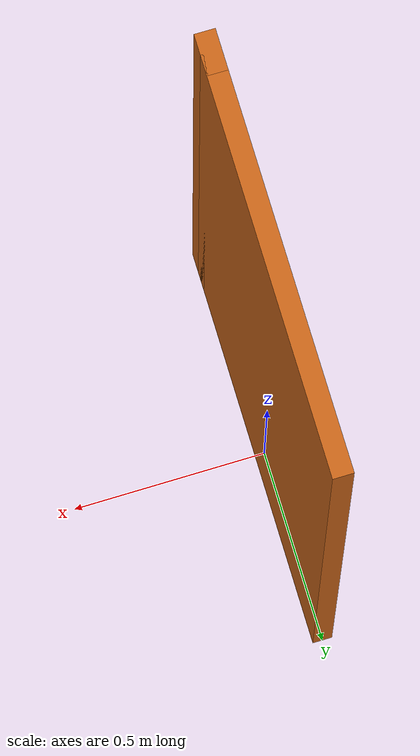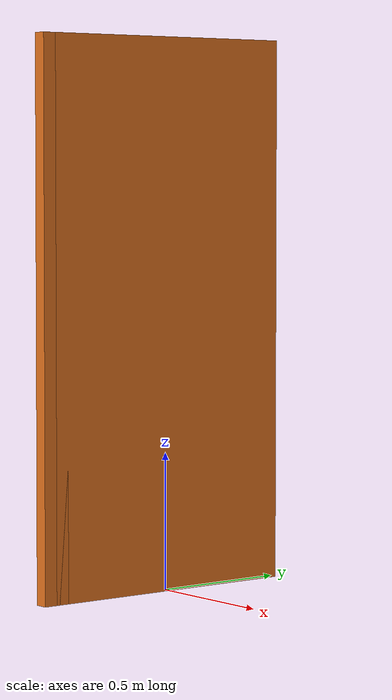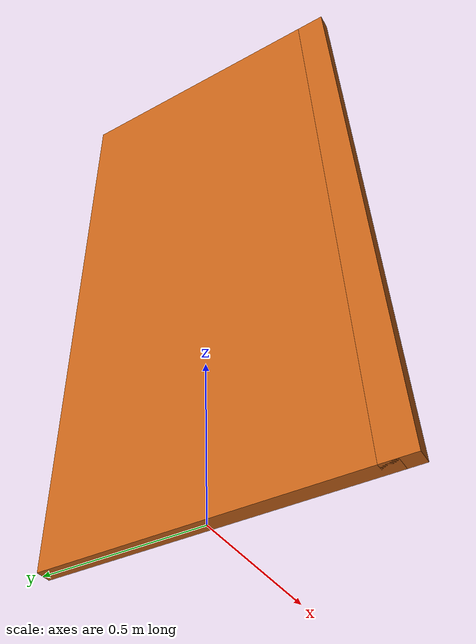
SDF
<?xml version="1.0" ?>
<sdf version="1.6">
  <model name="entrance_door">
    <static>false</static>
    <link name="door_post">
      <pose>0 -0.5 1 0 0 0</pose>
      <inertial>
        <mass>1.0</mass>
        <inertia ixx="0.01" ixy="0" ixz="0" iyy="0.01" iyz="0" izz="0.01" />
      </inertial>
      <visual name="visual">
        <geometry><box><size>0.05 0.1 2.0</size></box></geometry>
        <material><ambient>0.8 0.4 0.1 1</ambient></material>
      </visual>
    </link>

    <link name="door_leaf">
      <pose>0 0 1 0 0 0</pose>
      <inertial>
        <mass>5.0</mass>
        <inertia ixx="0.01" ixy="0" ixz="0" iyy="0.01" iyz="0" izz="0.01" />
      </inertial>
      <visual name="visual">
        <geometry><box><size>0.05 1.0 2.0</size></box></geometry>
        <material><ambient>0.8 0.4 0.1 1</ambient></material>
      </visual>
      <collision name="collision">
        <geometry><box><size>0.05 1.0 2.0</size></box></geometry>
      </collision>
    </link>

    <joint name="door_joint" type="revolute">
      <parent>door_post</parent>
      <child>door_leaf</child>
      <pose>0 0.5 0 0 0 0</pose>
      <axis>
        <xyz>0 0 1</xyz>
        <limit lower="-1.57" upper="0"/>
      </axis>
    </joint>

  </model>
</sdf>
